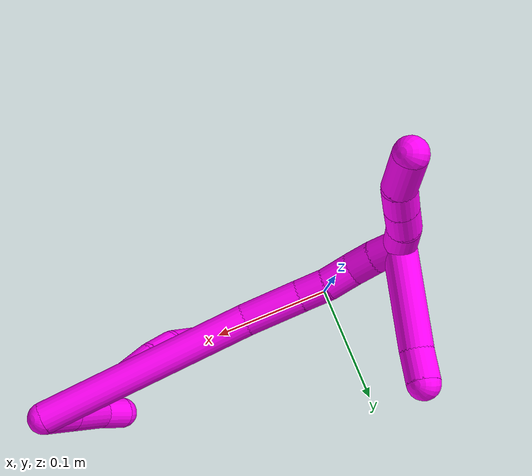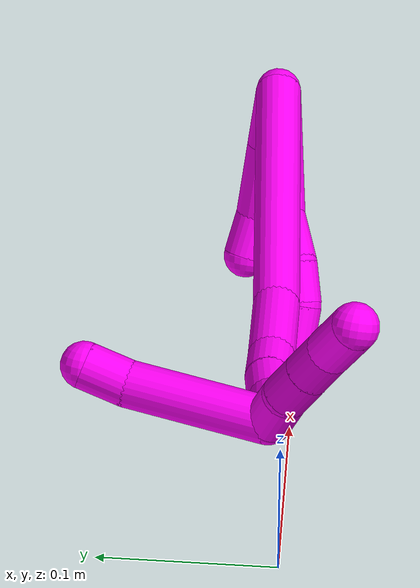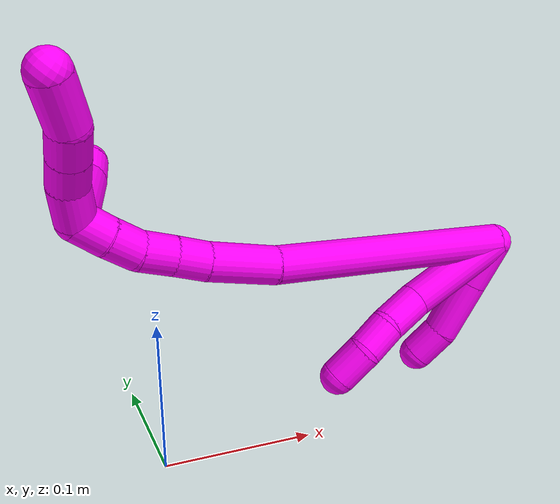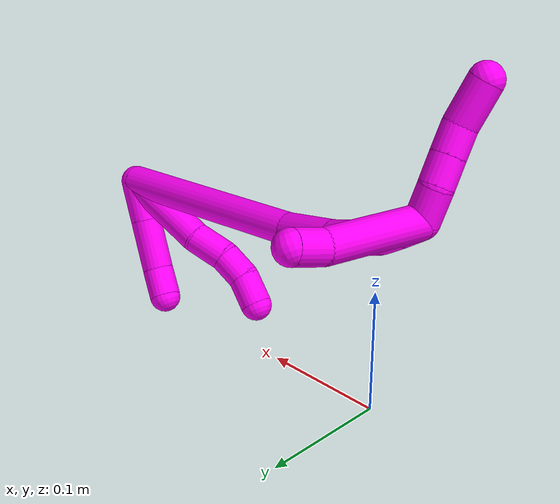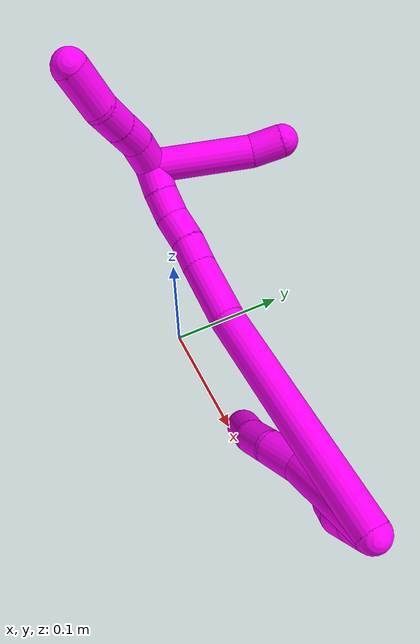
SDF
<sdf version="1.7">
 <world name="default">
  <model name="10">
   <static>0</static>
   <link name="10">
    <collision name="collision-cylinder-e_1_2_8">
     <pose>-0.014137 -0.010013 -0.032286 2.84086 -0.396104 -1.84824</pose>
     <geometry><cylinder><radius>0.0125</radius><length>0.073281</length></cylinder></geometry>
     <surface>
      <friction><ode><mu>1.16</mu><mu2>1.16</mu2><slip1>0</slip1><slip2>0</slip2></ode></friction>
      <contact><ode><kp>1e+06</kp><kd>1</kd><max_vel>0</max_vel><min_depth>0.001</min_depth></ode></contact>
     </surface>
    </collision>
    <visual name="visual-cylinder-e_1_2_8">
     <pose>-0.014137 -0.010013 -0.032286 2.84086 -0.396104 -1.84824</pose>
     <geometry><cylinder><radius>0.0125</radius><length>0.073281</length></cylinder></geometry>
     <material><ambient>1 0 0.964706 1</ambient></material>
    </visual>
    <collision name="collision-cylinder-e_2_8_9">
     <pose>-0.033578 -0.026624 -0.076112 2.62222 -0.37969 -1.25232</pose>
     <geometry><cylinder><radius>0.0125</radius><length>0.028624</length></cylinder></geometry>
     <surface>
      <friction><ode><mu>1.16</mu><mu2>1.16</mu2><slip1>0</slip1><slip2>0</slip2></ode></friction>
      <contact><ode><kp>1e+06</kp><kd>1</kd><max_vel>0</max_vel><min_depth>0.001</min_depth></ode></contact>
     </surface>
    </collision>
    <visual name="visual-cylinder-e_2_8_9">
     <pose>-0.033578 -0.026624 -0.076112 2.62222 -0.37969 -1.25232</pose>
     <geometry><cylinder><radius>0.0125</radius><length>0.028624</length></cylinder></geometry>
     <material><ambient>1 0 0.964706 1</ambient></material>
    </visual>
    <collision name="collision-cylinder-e_3_9_10">
     <pose>-0.041105 -0.03687 -0.098423 2.815 -0.193015 -1.06245</pose>
     <geometry><cylinder><radius>0.0125</radius><length>0.023174</length></cylinder></geometry>
     <surface>
      <friction><ode><mu>1.16</mu><mu2>1.16</mu2><slip1>0</slip1><slip2>0</slip2></ode></friction>
      <contact><ode><kp>1e+06</kp><kd>1</kd><max_vel>0</max_vel><min_depth>0.001</min_depth></ode></contact>
     </surface>
    </collision>
    <visual name="visual-cylinder-e_3_9_10">
     <pose>-0.041105 -0.03687 -0.098423 2.815 -0.193015 -1.06245</pose>
     <geometry><cylinder><radius>0.0125</radius><length>0.023174</length></cylinder></geometry>
     <material><ambient>1 0 0.964706 1</ambient></material>
    </visual>
    <collision name="collision-cylinder-e_4_10_6">
     <pose>-0.044644 -0.040813 -0.121581 3.11782 -0.105857 -2.70024</pose>
     <geometry><cylinder><radius>0.0125</radius><length>0.024922</length></cylinder></geometry>
     <surface>
      <friction><ode><mu>1.16</mu><mu2>1.16</mu2><slip1>0</slip1><slip2>0</slip2></ode></friction>
      <contact><ode><kp>1e+06</kp><kd>1</kd><max_vel>0</max_vel><min_depth>0.001</min_depth></ode></contact>
     </surface>
    </collision>
    <visual name="visual-cylinder-e_4_10_6">
     <pose>-0.044644 -0.040813 -0.121581 3.11782 -0.105857 -2.70024</pose>
     <geometry><cylinder><radius>0.0125</radius><length>0.024922</length></cylinder></geometry>
     <material><ambient>1 0 0.964706 1</ambient></material>
    </visual>
    <collision name="collision-cylinder-e_1_2_11">
     <pose>0.003647 0.000463 -0.016289 -3.11318 0.220155 -2.88594</pose>
     <geometry><cylinder><radius>0.0125</radius><length>0.033398</length></cylinder></geometry>
     <surface>
      <friction><ode><mu>1.16</mu><mu2>1.16</mu2><slip1>0</slip1><slip2>0</slip2></ode></friction>
      <contact><ode><kp>1e+06</kp><kd>1</kd><max_vel>0</max_vel><min_depth>0.001</min_depth></ode></contact>
     </surface>
    </collision>
    <visual name="visual-cylinder-e_1_2_11">
     <pose>0.003647 0.000463 -0.016289 -3.11318 0.220155 -2.88594</pose>
     <geometry><cylinder><radius>0.0125</radius><length>0.033398</length></cylinder></geometry>
     <material><ambient>1 0 0.964706 1</ambient></material>
    </visual>
    <collision name="collision-cylinder-e_2_11_12">
     <pose>0.011941 0.001532 -0.05315 -3.11211 0.222101 -2.87874</pose>
     <geometry><cylinder><radius>0.0125</radius><length>0.042197</length></cylinder></geometry>
     <surface>
      <friction><ode><mu>1.16</mu><mu2>1.16</mu2><slip1>0</slip1><slip2>0</slip2></ode></friction>
      <contact><ode><kp>1e+06</kp><kd>1</kd><max_vel>0</max_vel><min_depth>0.001</min_depth></ode></contact>
     </surface>
    </collision>
    <visual name="visual-cylinder-e_2_11_12">
     <pose>0.011941 0.001532 -0.05315 -3.11211 0.222101 -2.87874</pose>
     <geometry><cylinder><radius>0.0125</radius><length>0.042197</length></cylinder></geometry>
     <material><ambient>1 0 0.964706 1</ambient></material>
    </visual>
    <collision name="collision-cylinder-e_3_12_5">
     <pose>0.016096 0.00351 -0.085837 -3.02887 -0.040377 0.687326</pose>
     <geometry><cylinder><radius>0.0125</radius><length>0.024405</length></cylinder></geometry>
     <surface>
      <friction><ode><mu>1.16</mu><mu2>1.16</mu2><slip1>0</slip1><slip2>0</slip2></ode></friction>
      <contact><ode><kp>1e+06</kp><kd>1</kd><max_vel>0</max_vel><min_depth>0.001</min_depth></ode></contact>
     </surface>
    </collision>
    <visual name="visual-cylinder-e_3_12_5">
     <pose>0.016096 0.00351 -0.085837 -3.02887 -0.040377 0.687326</pose>
     <geometry><cylinder><radius>0.0125</radius><length>0.024405</length></cylinder></geometry>
     <material><ambient>1 0 0.964706 1</ambient></material>
    </visual>
    <collision name="collision-cylinder-e_1_2_13">
     <pose>-0.066467 -0.021967 -0.047945 2.71197 -0.900074 -2.29319</pose>
     <geometry><cylinder><radius>0.0125</radius><length>0.169696</length></cylinder></geometry>
     <surface>
      <friction><ode><mu>1.16</mu><mu2>1.16</mu2><slip1>0</slip1><slip2>0</slip2></ode></friction>
      <contact><ode><kp>1e+06</kp><kd>1</kd><max_vel>0</max_vel><min_depth>0.001</min_depth></ode></contact>
     </surface>
    </collision>
    <visual name="visual-cylinder-e_1_2_13">
     <pose>-0.066467 -0.021967 -0.047945 2.71197 -0.900074 -2.29319</pose>
     <geometry><cylinder><radius>0.0125</radius><length>0.169696</length></cylinder></geometry>
     <material><ambient>1 0 0.964706 1</ambient></material>
    </visual>
    <collision name="collision-cylinder-e_2_13_14">
     <pose>-0.152677 -0.048614 -0.106225 2.7163 -1.04918 -2.42736</pose>
     <geometry><cylinder><radius>0.0125</radius><length>0.045539</length></cylinder></geometry>
     <surface>
      <friction><ode><mu>1.16</mu><mu2>1.16</mu2><slip1>0</slip1><slip2>0</slip2></ode></friction>
      <contact><ode><kp>1e+06</kp><kd>1</kd><max_vel>0</max_vel><min_depth>0.001</min_depth></ode></contact>
     </surface>
    </collision>
    <visual name="visual-cylinder-e_2_13_14">
     <pose>-0.152677 -0.048614 -0.106225 2.7163 -1.04918 -2.42736</pose>
     <geometry><cylinder><radius>0.0125</radius><length>0.045539</length></cylinder></geometry>
     <material><ambient>1 0 0.964706 1</ambient></material>
    </visual>
    <collision name="collision-cylinder-e_3_14_15">
     <pose>-0.182317 -0.055275 -0.120447 2.67063 -1.15575 -2.4365</pose>
     <geometry><cylinder><radius>0.0125</radius><length>0.021635</length></cylinder></geometry>
     <surface>
      <friction><ode><mu>1.16</mu><mu2>1.16</mu2><slip1>0</slip1><slip2>0</slip2></ode></friction>
      <contact><ode><kp>1e+06</kp><kd>1</kd><max_vel>0</max_vel><min_depth>0.001</min_depth></ode></contact>
     </surface>
    </collision>
    <visual name="visual-cylinder-e_3_14_15">
     <pose>-0.182317 -0.055275 -0.120447 2.67063 -1.15575 -2.4365</pose>
     <geometry><cylinder><radius>0.0125</radius><length>0.021635</length></cylinder></geometry>
     <material><ambient>1 0 0.964706 1</ambient></material>
    </visual>
    <collision name="collision-cylinder-e_4_15_16">
     <pose>-0.202246 -0.060759 -0.127998 2.37846 -1.10272 -1.98543</pose>
     <geometry><cylinder><radius>0.0125</radius><length>0.022477</length></cylinder></geometry>
     <surface>
      <friction><ode><mu>1.16</mu><mu2>1.16</mu2><slip1>0</slip1><slip2>0</slip2></ode></friction>
      <contact><ode><kp>1e+06</kp><kd>1</kd><max_vel>0</max_vel><min_depth>0.001</min_depth></ode></contact>
     </surface>
    </collision>
    <visual name="visual-cylinder-e_4_15_16">
     <pose>-0.202246 -0.060759 -0.127998 2.37846 -1.10272 -1.98543</pose>
     <geometry><cylinder><radius>0.0125</radius><length>0.022477</length></cylinder></geometry>
     <material><ambient>1 0 0.964706 1</ambient></material>
    </visual>
    <collision name="collision-cylinder-e_5_16_17">
     <pose>-0.222084 -0.066553 -0.132598 1.95884 -1.3238 -1.71887</pose>
     <geometry><cylinder><radius>0.0125</radius><length>0.020231</length></cylinder></geometry>
     <surface>
      <friction><ode><mu>1.16</mu><mu2>1.16</mu2><slip1>0</slip1><slip2>0</slip2></ode></friction>
      <contact><ode><kp>1e+06</kp><kd>1</kd><max_vel>0</max_vel><min_depth>0.001</min_depth></ode></contact>
     </surface>
    </collision>
    <visual name="visual-cylinder-e_5_16_17">
     <pose>-0.222084 -0.066553 -0.132598 1.95884 -1.3238 -1.71887</pose>
     <geometry><cylinder><radius>0.0125</radius><length>0.020231</length></cylinder></geometry>
     <material><ambient>1 0 0.964706 1</ambient></material>
    </visual>
    <collision name="collision-cylinder-e_6_17_1">
     <pose>-0.241987 -0.070235 -0.134186 2.00865 -1.41956 -1.8671</pose>
     <geometry><cylinder><radius>0.0125</radius><length>0.020422</length></cylinder></geometry>
     <surface>
      <friction><ode><mu>1.16</mu><mu2>1.16</mu2><slip1>0</slip1><slip2>0</slip2></ode></friction>
      <contact><ode><kp>1e+06</kp><kd>1</kd><max_vel>0</max_vel><min_depth>0.001</min_depth></ode></contact>
     </surface>
    </collision>
    <visual name="visual-cylinder-e_6_17_1">
     <pose>-0.241987 -0.070235 -0.134186 2.00865 -1.41956 -1.8671</pose>
     <geometry><cylinder><radius>0.0125</radius><length>0.020422</length></cylinder></geometry>
     <material><ambient>1 0 0.964706 1</ambient></material>
    </visual>
    <collision name="collision-cylinder-e_1_1_18">
     <pose>-0.260004 -0.076096 -0.126364 0.485109 -0.690965 -0.177637</pose>
     <geometry><cylinder><radius>0.0125</radius><length>0.024863</length></cylinder></geometry>
     <surface>
      <friction><ode><mu>1.16</mu><mu2>1.16</mu2><slip1>0</slip1><slip2>0</slip2></ode></friction>
      <contact><ode><kp>1e+06</kp><kd>1</kd><max_vel>0</max_vel><min_depth>0.001</min_depth></ode></contact>
     </surface>
    </collision>
    <visual name="visual-cylinder-e_1_1_18">
     <pose>-0.260004 -0.076096 -0.126364 0.485109 -0.690965 -0.177637</pose>
     <geometry><cylinder><radius>0.0125</radius><length>0.024863</length></cylinder></geometry>
     <material><ambient>1 0 0.964706 1</ambient></material>
    </visual>
    <collision name="collision-cylinder-e_2_18_19">
     <pose>-0.272608 -0.085966 -0.110052 0.603626 -0.457056 -0.14457</pose>
     <geometry><cylinder><radius>0.0125</radius><length>0.021217</length></cylinder></geometry>
     <surface>
      <friction><ode><mu>1.16</mu><mu2>1.16</mu2><slip1>0</slip1><slip2>0</slip2></ode></friction>
      <contact><ode><kp>1e+06</kp><kd>1</kd><max_vel>0</max_vel><min_depth>0.001</min_depth></ode></contact>
     </surface>
    </collision>
    <visual name="visual-cylinder-e_2_18_19">
     <pose>-0.272608 -0.085966 -0.110052 0.603626 -0.457056 -0.14457</pose>
     <geometry><cylinder><radius>0.0125</radius><length>0.021217</length></cylinder></geometry>
     <material><ambient>1 0 0.964706 1</ambient></material>
    </visual>
    <collision name="collision-cylinder-e_3_19_20">
     <pose>-0.282105 -0.096747 -0.094499 0.608645 -0.473257 -0.151189</pose>
     <geometry><cylinder><radius>0.0125</radius><length>0.02113</length></cylinder></geometry>
     <surface>
      <friction><ode><mu>1.16</mu><mu2>1.16</mu2><slip1>0</slip1><slip2>0</slip2></ode></friction>
      <contact><ode><kp>1e+06</kp><kd>1</kd><max_vel>0</max_vel><min_depth>0.001</min_depth></ode></contact>
     </surface>
    </collision>
    <visual name="visual-cylinder-e_3_19_20">
     <pose>-0.282105 -0.096747 -0.094499 0.608645 -0.473257 -0.151189</pose>
     <geometry><cylinder><radius>0.0125</radius><length>0.02113</length></cylinder></geometry>
     <material><ambient>1 0 0.964706 1</ambient></material>
    </visual>
    <collision name="collision-cylinder-e_4_20_4">
     <pose>-0.298319 -0.10917 -0.077339 0.641023 -0.768767 -0.26696</pose>
     <geometry><cylinder><radius>0.0125</radius><length>0.03279</length></cylinder></geometry>
     <surface>
      <friction><ode><mu>1.16</mu><mu2>1.16</mu2><slip1>0</slip1><slip2>0</slip2></ode></friction>
      <contact><ode><kp>1e+06</kp><kd>1</kd><max_vel>0</max_vel><min_depth>0.001</min_depth></ode></contact>
     </surface>
    </collision>
    <visual name="visual-cylinder-e_4_20_4">
     <pose>-0.298319 -0.10917 -0.077339 0.641023 -0.768767 -0.26696</pose>
     <geometry><cylinder><radius>0.0125</radius><length>0.03279</length></cylinder></geometry>
     <material><ambient>1 0 0.964706 1</ambient></material>
    </visual>
    <collision name="collision-cylinder-e_1_1_21">
     <pose>-0.251173 -0.033806 -0.133237 -1.52846 0.023987 -0.022992</pose>
     <geometry><cylinder><radius>0.0125</radius><length>0.075734</length></cylinder></geometry>
     <surface>
      <friction><ode><mu>1.16</mu><mu2>1.16</mu2><slip1>0</slip1><slip2>0</slip2></ode></friction>
      <contact><ode><kp>1e+06</kp><kd>1</kd><max_vel>0</max_vel><min_depth>0.001</min_depth></ode></contact>
     </surface>
    </collision>
    <visual name="visual-cylinder-e_1_1_21">
     <pose>-0.251173 -0.033806 -0.133237 -1.52846 0.023987 -0.022992</pose>
     <geometry><cylinder><radius>0.0125</radius><length>0.075734</length></cylinder></geometry>
     <material><ambient>1 0 0.964706 1</ambient></material>
    </visual>
    <collision name="collision-cylinder-e_2_21_3">
     <pose>-0.251831 0.015751 -0.12898 -1.3483 -0.129421 0.103463</pose>
     <geometry><cylinder><radius>0.0125</radius><length>0.024266</length></cylinder></geometry>
     <surface>
      <friction><ode><mu>1.16</mu><mu2>1.16</mu2><slip1>0</slip1><slip2>0</slip2></ode></friction>
      <contact><ode><kp>1e+06</kp><kd>1</kd><max_vel>0</max_vel><min_depth>0.001</min_depth></ode></contact>
     </surface>
    </collision>
    <visual name="visual-cylinder-e_2_21_3">
     <pose>-0.251831 0.015751 -0.12898 -1.3483 -0.129421 0.103463</pose>
     <geometry><cylinder><radius>0.0125</radius><length>0.024266</length></cylinder></geometry>
     <material><ambient>1 0 0.964706 1</ambient></material>
    </visual>
    <collision name="collision-sphere-3">
     <pose>-0.253397 0.027486 -0.126325 0 -0 0</pose>
     <geometry><sphere><radius>0.0125</radius></sphere></geometry>
     <surface>
      <friction><ode><mu>1.16</mu><mu2>1.16</mu2><slip1>0</slip1><slip2>0</slip2></ode></friction>
      <contact><ode><kp>1e+06</kp><kd>1</kd><max_vel>0</max_vel><min_depth>0.001</min_depth></ode></contact>
     </surface>
    </collision>
    <visual name="visual-sphere-3">
     <pose>-0.253397 0.027486 -0.126325 0 -0 0</pose>
     <geometry><sphere><radius>0.0125</radius></sphere></geometry>
     <material><ambient>1 0 0.964706 1</ambient></material>
    </visual>
    <collision name="collision-sphere-21">
     <pose>-0.250265 0.004016 -0.131635 0 -0 0</pose>
     <geometry><sphere><radius>0.0125</radius></sphere></geometry>
     <surface>
      <friction><ode><mu>1.16</mu><mu2>1.16</mu2><slip1>0</slip1><slip2>0</slip2></ode></friction>
      <contact><ode><kp>1e+06</kp><kd>1</kd><max_vel>0</max_vel><min_depth>0.001</min_depth></ode></contact>
     </surface>
    </collision>
    <visual name="visual-sphere-21">
     <pose>-0.250265 0.004016 -0.131635 0 -0 0</pose>
     <geometry><sphere><radius>0.0125</radius></sphere></geometry>
     <material><ambient>1 0 0.964706 1</ambient></material>
    </visual>
    <collision name="collision-sphere-4">
     <pose>-0.309718 -0.116218 -0.067895 0 -0 0</pose>
     <geometry><sphere><radius>0.0125</radius></sphere></geometry>
     <surface>
      <friction><ode><mu>1.16</mu><mu2>1.16</mu2><slip1>0</slip1><slip2>0</slip2></ode></friction>
      <contact><ode><kp>1e+06</kp><kd>1</kd><max_vel>0</max_vel><min_depth>0.001</min_depth></ode></contact>
     </surface>
    </collision>
    <visual name="visual-sphere-4">
     <pose>-0.309718 -0.116218 -0.067895 0 -0 0</pose>
     <geometry><sphere><radius>0.0125</radius></sphere></geometry>
     <material><ambient>1 0 0.964706 1</ambient></material>
    </visual>
    <collision name="collision-sphere-20">
     <pose>-0.28692 -0.102123 -0.086784 0 -0 0</pose>
     <geometry><sphere><radius>0.0125</radius></sphere></geometry>
     <surface>
      <friction><ode><mu>1.16</mu><mu2>1.16</mu2><slip1>0</slip1><slip2>0</slip2></ode></friction>
      <contact><ode><kp>1e+06</kp><kd>1</kd><max_vel>0</max_vel><min_depth>0.001</min_depth></ode></contact>
     </surface>
    </collision>
    <visual name="visual-sphere-20">
     <pose>-0.28692 -0.102123 -0.086784 0 -0 0</pose>
     <geometry><sphere><radius>0.0125</radius></sphere></geometry>
     <material><ambient>1 0 0.964706 1</ambient></material>
    </visual>
    <collision name="collision-sphere-11">
     <pose>0.007294 0.000926 -0.032579 0 -0 0</pose>
     <geometry><sphere><radius>0.0125</radius></sphere></geometry>
     <surface>
      <friction><ode><mu>1.16</mu><mu2>1.16</mu2><slip1>0</slip1><slip2>0</slip2></ode></friction>
      <contact><ode><kp>1e+06</kp><kd>1</kd><max_vel>0</max_vel><min_depth>0.001</min_depth></ode></contact>
     </surface>
    </collision>
    <visual name="visual-sphere-11">
     <pose>0.007294 0.000926 -0.032579 0 -0 0</pose>
     <geometry><sphere><radius>0.0125</radius></sphere></geometry>
     <material><ambient>1 0 0.964706 1</ambient></material>
    </visual>
    <collision name="collision-sphere-6">
     <pose>-0.045961 -0.041107 -0.133968 0 -0 0</pose>
     <geometry><sphere><radius>0.0125</radius></sphere></geometry>
     <surface>
      <friction><ode><mu>1.16</mu><mu2>1.16</mu2><slip1>0</slip1><slip2>0</slip2></ode></friction>
      <contact><ode><kp>1e+06</kp><kd>1</kd><max_vel>0</max_vel><min_depth>0.001</min_depth></ode></contact>
     </surface>
    </collision>
    <visual name="visual-sphere-6">
     <pose>-0.045961 -0.041107 -0.133968 0 -0 0</pose>
     <geometry><sphere><radius>0.0125</radius></sphere></geometry>
     <material><ambient>1 0 0.964706 1</ambient></material>
    </visual>
    <collision name="collision-sphere-10">
     <pose>-0.043328 -0.040518 -0.109193 0 -0 0</pose>
     <geometry><sphere><radius>0.0125</radius></sphere></geometry>
     <surface>
      <friction><ode><mu>1.16</mu><mu2>1.16</mu2><slip1>0</slip1><slip2>0</slip2></ode></friction>
      <contact><ode><kp>1e+06</kp><kd>1</kd><max_vel>0</max_vel><min_depth>0.001</min_depth></ode></contact>
     </surface>
    </collision>
    <visual name="visual-sphere-10">
     <pose>-0.043328 -0.040518 -0.109193 0 -0 0</pose>
     <geometry><sphere><radius>0.0125</radius></sphere></geometry>
     <material><ambient>1 0 0.964706 1</ambient></material>
    </visual>
    <collision name="collision-sphere-9">
     <pose>-0.038883 -0.033222 -0.087652 0 -0 0</pose>
     <geometry><sphere><radius>0.0125</radius></sphere></geometry>
     <surface>
      <friction><ode><mu>1.16</mu><mu2>1.16</mu2><slip1>0</slip1><slip2>0</slip2></ode></friction>
      <contact><ode><kp>1e+06</kp><kd>1</kd><max_vel>0</max_vel><min_depth>0.001</min_depth></ode></contact>
     </surface>
    </collision>
    <visual name="visual-sphere-9">
     <pose>-0.038883 -0.033222 -0.087652 0 -0 0</pose>
     <geometry><sphere><radius>0.0125</radius></sphere></geometry>
     <material><ambient>1 0 0.964706 1</ambient></material>
    </visual>
    <collision name="collision-sphere-2">
     <geometry><sphere><radius>0.0125</radius></sphere></geometry>
     <surface>
      <friction><ode><mu>1.16</mu><mu2>1.16</mu2><slip1>0</slip1><slip2>0</slip2></ode></friction>
      <contact><ode><kp>1e+06</kp><kd>1</kd><max_vel>0</max_vel><min_depth>0.001</min_depth></ode></contact>
     </surface>
    </collision>
    <visual name="visual-sphere-2">
     <geometry><sphere><radius>0.0125</radius></sphere></geometry>
     <material><ambient>1 0 0.964706 1</ambient></material>
    </visual>
    <collision name="collision-sphere-19">
     <pose>-0.27729 -0.09137 -0.102214 0 -0 0</pose>
     <geometry><sphere><radius>0.0125</radius></sphere></geometry>
     <surface>
      <friction><ode><mu>1.16</mu><mu2>1.16</mu2><slip1>0</slip1><slip2>0</slip2></ode></friction>
      <contact><ode><kp>1e+06</kp><kd>1</kd><max_vel>0</max_vel><min_depth>0.001</min_depth></ode></contact>
     </surface>
    </collision>
    <visual name="visual-sphere-19">
     <pose>-0.27729 -0.09137 -0.102214 0 -0 0</pose>
     <geometry><sphere><radius>0.0125</radius></sphere></geometry>
     <material><ambient>1 0 0.964706 1</ambient></material>
    </visual>
    <collision name="collision-sphere-8">
     <pose>-0.028274 -0.020027 -0.064573 0 -0 0</pose>
     <geometry><sphere><radius>0.0125</radius></sphere></geometry>
     <surface>
      <friction><ode><mu>1.16</mu><mu2>1.16</mu2><slip1>0</slip1><slip2>0</slip2></ode></friction>
      <contact><ode><kp>1e+06</kp><kd>1</kd><max_vel>0</max_vel><min_depth>0.001</min_depth></ode></contact>
     </surface>
    </collision>
    <visual name="visual-sphere-8">
     <pose>-0.028274 -0.020027 -0.064573 0 -0 0</pose>
     <geometry><sphere><radius>0.0125</radius></sphere></geometry>
     <material><ambient>1 0 0.964706 1</ambient></material>
    </visual>
    <collision name="collision-sphere-12">
     <pose>0.016589 0.002139 -0.073722 0 -0 0</pose>
     <geometry><sphere><radius>0.0125</radius></sphere></geometry>
     <surface>
      <friction><ode><mu>1.16</mu><mu2>1.16</mu2><slip1>0</slip1><slip2>0</slip2></ode></friction>
      <contact><ode><kp>1e+06</kp><kd>1</kd><max_vel>0</max_vel><min_depth>0.001</min_depth></ode></contact>
     </surface>
    </collision>
    <visual name="visual-sphere-12">
     <pose>0.016589 0.002139 -0.073722 0 -0 0</pose>
     <geometry><sphere><radius>0.0125</radius></sphere></geometry>
     <material><ambient>1 0 0.964706 1</ambient></material>
    </visual>
    <collision name="collision-sphere-5">
     <pose>0.015604 0.004882 -0.097952 0 -0 0</pose>
     <geometry><sphere><radius>0.0125</radius></sphere></geometry>
     <surface>
      <friction><ode><mu>1.16</mu><mu2>1.16</mu2><slip1>0</slip1><slip2>0</slip2></ode></friction>
      <contact><ode><kp>1e+06</kp><kd>1</kd><max_vel>0</max_vel><min_depth>0.001</min_depth></ode></contact>
     </surface>
    </collision>
    <visual name="visual-sphere-5">
     <pose>0.015604 0.004882 -0.097952 0 -0 0</pose>
     <geometry><sphere><radius>0.0125</radius></sphere></geometry>
     <material><ambient>1 0 0.964706 1</ambient></material>
    </visual>
    <collision name="collision-sphere-13">
     <pose>-0.132935 -0.043933 -0.095889 0 -0 0</pose>
     <geometry><sphere><radius>0.0125</radius></sphere></geometry>
     <surface>
      <friction><ode><mu>1.16</mu><mu2>1.16</mu2><slip1>0</slip1><slip2>0</slip2></ode></friction>
      <contact><ode><kp>1e+06</kp><kd>1</kd><max_vel>0</max_vel><min_depth>0.001</min_depth></ode></contact>
     </surface>
    </collision>
    <visual name="visual-sphere-13">
     <pose>-0.132935 -0.043933 -0.095889 0 -0 0</pose>
     <geometry><sphere><radius>0.0125</radius></sphere></geometry>
     <material><ambient>1 0 0.964706 1</ambient></material>
    </visual>
    <collision name="collision-sphere-14">
     <pose>-0.172418 -0.053296 -0.11656 0 -0 0</pose>
     <geometry><sphere><radius>0.0125</radius></sphere></geometry>
     <surface>
      <friction><ode><mu>1.16</mu><mu2>1.16</mu2><slip1>0</slip1><slip2>0</slip2></ode></friction>
      <contact><ode><kp>1e+06</kp><kd>1</kd><max_vel>0</max_vel><min_depth>0.001</min_depth></ode></contact>
     </surface>
    </collision>
    <visual name="visual-sphere-14">
     <pose>-0.172418 -0.053296 -0.11656 0 -0 0</pose>
     <geometry><sphere><radius>0.0125</radius></sphere></geometry>
     <material><ambient>1 0 0.964706 1</ambient></material>
    </visual>
    <collision name="collision-sphere-15">
     <pose>-0.192216 -0.057254 -0.124334 0 -0 0</pose>
     <geometry><sphere><radius>0.0125</radius></sphere></geometry>
     <surface>
      <friction><ode><mu>1.16</mu><mu2>1.16</mu2><slip1>0</slip1><slip2>0</slip2></ode></friction>
      <contact><ode><kp>1e+06</kp><kd>1</kd><max_vel>0</max_vel><min_depth>0.001</min_depth></ode></contact>
     </surface>
    </collision>
    <visual name="visual-sphere-15">
     <pose>-0.192216 -0.057254 -0.124334 0 -0 0</pose>
     <geometry><sphere><radius>0.0125</radius></sphere></geometry>
     <material><ambient>1 0 0.964706 1</ambient></material>
    </visual>
    <collision name="collision-sphere-16">
     <pose>-0.212276 -0.064263 -0.131663 0 -0 0</pose>
     <geometry><sphere><radius>0.0125</radius></sphere></geometry>
     <surface>
      <friction><ode><mu>1.16</mu><mu2>1.16</mu2><slip1>0</slip1><slip2>0</slip2></ode></friction>
      <contact><ode><kp>1e+06</kp><kd>1</kd><max_vel>0</max_vel><min_depth>0.001</min_depth></ode></contact>
     </surface>
    </collision>
    <visual name="visual-sphere-16">
     <pose>-0.212276 -0.064263 -0.131663 0 -0 0</pose>
     <geometry><sphere><radius>0.0125</radius></sphere></geometry>
     <material><ambient>1 0 0.964706 1</ambient></material>
    </visual>
    <collision name="collision-sphere-17">
     <pose>-0.231892 -0.068842 -0.133534 0 -0 0</pose>
     <geometry><sphere><radius>0.0125</radius></sphere></geometry>
     <surface>
      <friction><ode><mu>1.16</mu><mu2>1.16</mu2><slip1>0</slip1><slip2>0</slip2></ode></friction>
      <contact><ode><kp>1e+06</kp><kd>1</kd><max_vel>0</max_vel><min_depth>0.001</min_depth></ode></contact>
     </surface>
    </collision>
    <visual name="visual-sphere-17">
     <pose>-0.231892 -0.068842 -0.133534 0 -0 0</pose>
     <geometry><sphere><radius>0.0125</radius></sphere></geometry>
     <material><ambient>1 0 0.964706 1</ambient></material>
    </visual>
    <collision name="collision-sphere-1">
     <pose>-0.252081 -0.071628 -0.134839 0 -0 0</pose>
     <geometry><sphere><radius>0.0125</radius></sphere></geometry>
     <surface>
      <friction><ode><mu>1.16</mu><mu2>1.16</mu2><slip1>0</slip1><slip2>0</slip2></ode></friction>
      <contact><ode><kp>1e+06</kp><kd>1</kd><max_vel>0</max_vel><min_depth>0.001</min_depth></ode></contact>
     </surface>
    </collision>
    <visual name="visual-sphere-1">
     <pose>-0.252081 -0.071628 -0.134839 0 -0 0</pose>
     <geometry><sphere><radius>0.0125</radius></sphere></geometry>
     <material><ambient>1 0 0.964706 1</ambient></material>
    </visual>
    <collision name="collision-sphere-18">
     <pose>-0.267926 -0.080563 -0.117889 0 -0 0</pose>
     <geometry><sphere><radius>0.0125</radius></sphere></geometry>
     <surface>
      <friction><ode><mu>1.16</mu><mu2>1.16</mu2><slip1>0</slip1><slip2>0</slip2></ode></friction>
      <contact><ode><kp>1e+06</kp><kd>1</kd><max_vel>0</max_vel><min_depth>0.001</min_depth></ode></contact>
     </surface>
    </collision>
    <visual name="visual-sphere-18">
     <pose>-0.267926 -0.080563 -0.117889 0 -0 0</pose>
     <geometry><sphere><radius>0.0125</radius></sphere></geometry>
     <material><ambient>1 0 0.964706 1</ambient></material>
    </visual>
    <inertial>
     <pose>-0.123101 -0.034671 -0.082461 0 -0 0</pose>
     <mass>0.75</mass>
     <inertia>
      <ixx>-0.000411</ixx>
      <ixy>0</ixy>
      <ixz>0</ixz>
      <iyy>0.000157</iyy>
      <iyz>0</iyz>
      <izz>0.000419</izz>
     </inertia>
    </inertial>
   </link>
   <pose>0.248669 0.016768 0.115009 -0.006659 0.686616 -0.210961</pose>
  </model>
 </world>
</sdf>
